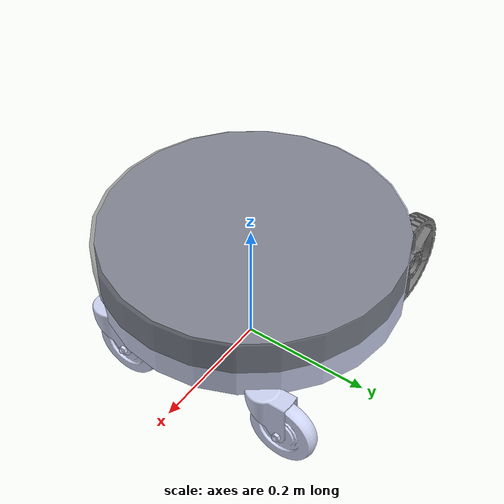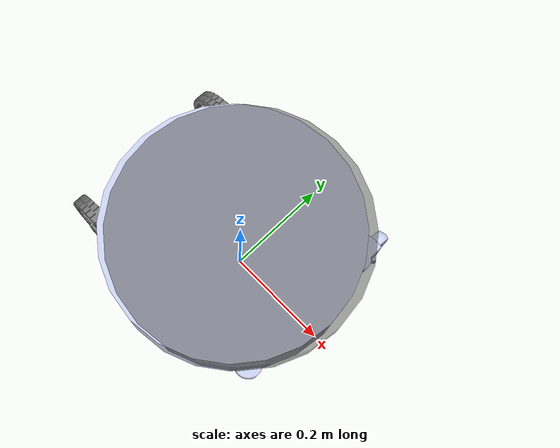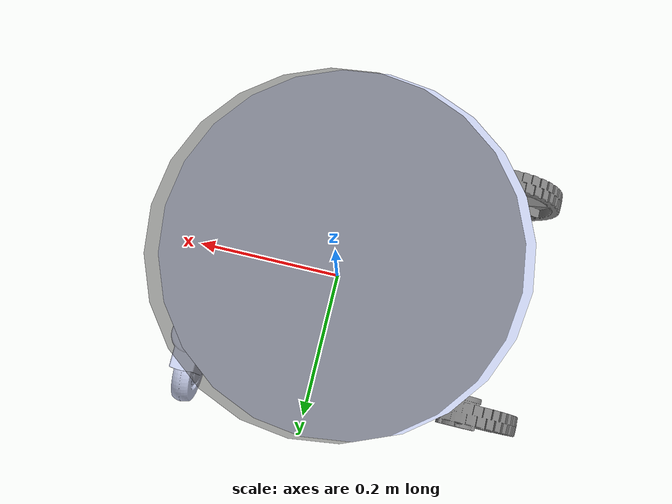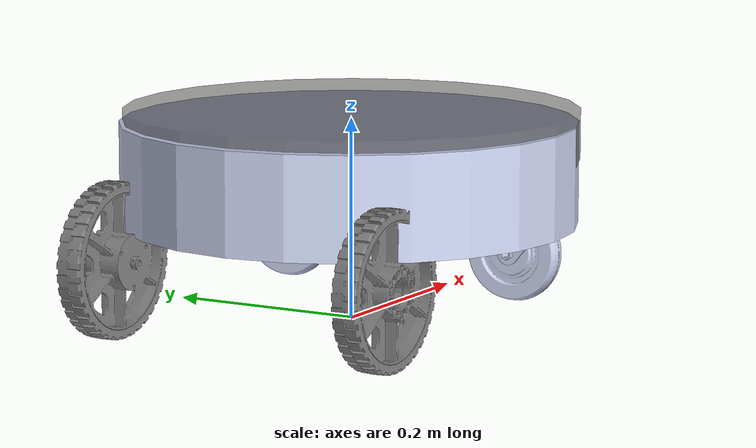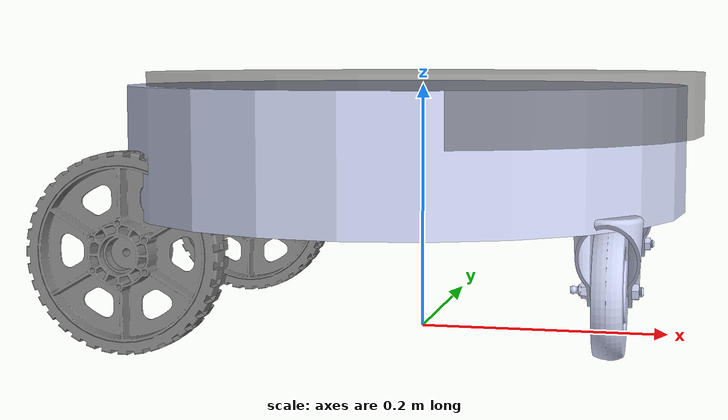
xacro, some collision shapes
<?xml version="1.0" encoding="utf-8"?>

<robot
  xmlns:xacro="http://www.ros.org/wiki/xacro">

  <xacro:property name="a_dim" value="0.2" />
  <xacro:property name="b_dim" value="0.2" />
  <xacro:property name="a_dim" value="0.2" />

  <link name="base_footprint" />

  <joint name="base_footprint_base_joint" type="fixed">
    <origin
      xyz="-0.284843388017437 -0.203598611982565 0.12064984794"
      rpy="0 0 ${pi/2.0}" />
    <parent
      link="base_footprint" />
    <child
      link="base_link" />
  </joint>

  <link name="base_link">
    <inertial>
      <origin
        xyz="0.198549611345678 -0.271316507443243 0.0289830936800706"
        rpy="0 0 0" />
      <mass
        value="3.89825211968488" />
      <inertia
        ixx="0.0661197424829709"
        ixy="0.000127503435039246"
        ixz="-3.37223289848948E-05"
        iyy="0.0537150913742591"
        iyz="1.76042008590663E-10"
        izz="0.119166120190766" />
    </inertial>
    <visual>
      <origin
        xyz="0 0 0"
        rpy="0 0 0" />
      <geometry>
        <mesh
          filename="package://hamr_description/meshes/base_link.stl" />
      </geometry>
      <material
        name="">
        <color
          rgba="0.792156862745098 0.819607843137255 0.933333333333333 1" />
      </material>
    </visual>
    <collision>
      <origin
        xyz="0.198549611345678 -0.271316507443243 0.0289830936800706"
        rpy="0 0 0" />
      <geometry>
        <cylinder radius="0.225" length="0.1" />
      </geometry>
    </collision>
  </link>

  <link name="right_wheel_link">

    <inertial>
      <origin
        xyz="-0.00186864044901727 2.89919122223314E-07 -1.06873356706116E-07"
        rpy="0 1.5707963267949 0" />
      <mass
        value="0.201354791790072" />
      <inertia
        ixx="0.000633771005763446"
        ixy="6.31284156682718E-10"
        ixz="-2.33742432524019E-10"
        iyy="0.000327993762072381"
        iyz="-1.05208219357446E-10"
        izz="0.000327993534995818" />
    </inertial>
    <visual>
      <origin
        xyz="0 0 0"
        rpy="0 1.5707963267949 0" />
      <geometry>
        <mesh
          filename="package://hamr_description/meshes/right_wheel_link.stl" />
      </geometry>
      <material
        name="">
        <color
          rgba="0.501960784313725 0.501960784313725 0.501960784313725 1" />
      </material>
    </visual>
    <collision>
      <origin
        xyz="0 0 0"
        rpy="0 1.5707963267949 0" />
      <geometry>
        <mesh
          filename="package://hamr_description/meshes/right_wheel_link.stl" />
      </geometry>
    </collision>
  </link>

  <joint name="base_right_wheel_joint" type="continuous">
    <origin
      xyz="0.0536437399956872 -0.0880220830805112 -0.0444496955381151"
      rpy="0 1.5707963267949 0" />
    <parent
      link="base_link" />
    <child
      link="right_wheel_link" />
    <axis
      xyz="0 0 1" />
  </joint>

  <link name="left_wheel_link">
    <inertial>
      <origin
        xyz="-1.54965267659679E-07 -2.70882595285182E-07 -0.0125686288378637"
        rpy="0 ${pi} 0" />
      <mass
        value="0.201354790396108" />
      <inertia
        ixx="0.000327993572579979"
        ixy="1.36473912872677E-10"
        ixz="3.33712968652168E-10"
        iyy="0.000327993723903578"
        iyz="5.84145333206651E-10"
        izz="0.000633771005385494" />
    </inertial>
    <visual>
      <origin
        xyz="0 0 ${0.0254 / 2.0}"
        rpy="0 ${pi} 0" />
      <geometry>
        <mesh
          filename="package://hamr_description/meshes/left_wheel_link.stl" />
      </geometry>
      <material
        name="">
        <color
          rgba="0.501960784313725 0.501960784313725 0.501960784313725 1" />
      </material>
    </visual>
    <collision>
      <origin
        xyz="0 0 ${0.0254 / 2.0}"
        rpy="0 ${pi} 0" />
      <geometry>
        <mesh
          filename="package://hamr_description/meshes/left_wheel_link.stl" />
      </geometry>
    </collision>
  </link>

  <joint name="base_left_wheel_joint" type="continuous">
    <origin
      xyz="${0.365456260020371 - 0.0254 / 2.0} -0.0880218689795108 -0.044451036743372"
      rpy="0 1.5707963267949 0" />
    <parent
      link="base_link" />
    <child
      link="left_wheel_link" />
    <axis
      xyz="0 0 1" />
  </joint>

  <link name="right_caster_link">
    <inertial>
      <origin
        xyz="-0.0150012811060658 -0.0307436227278899 0.000152559555446186"
        rpy="0 0 0" />
      <mass
        value="0.0265082807354226" />
      <inertia
        ixx="1.60132980312546E-05"
        ixy="-4.99863435365951E-06"
        ixz="3.31944351355999E-07"
        iyy="1.47149465447076E-05"
        iyz="6.51321675924592E-07"
        izz="1.89660027877702E-05" />
    </inertial>
    <visual>
      <origin
        xyz="0 0 0"
        rpy="0 0 0" />
      <geometry>
        <mesh
          filename="package://hamr_description/meshes/right_caster_link.stl" />
      </geometry>
      <material
        name="">
        <color
          rgba="0.792156862745098 0.819607843137255 0.933333333333333 1" />
      </material>
    </visual>
    <collision>
      <origin
        xyz="0 0 0"
        rpy="0 0 0" />
      <geometry>
        <mesh
          filename="package://hamr_description/meshes/right_caster_link.stl" />
      </geometry>
    </collision>
  </link>

  <joint name="base_right_caster_joint" type="continuous">
    <origin
      xyz="0.0693170406900002 -0.443936368975549 0"
      rpy="1.57079632679489 0 3.14159265358979" />
    <parent
      link="base_link" />
    <child
      link="right_caster_link" />
    <axis
      xyz="0 1 0" />
  </joint>

  <link name="right_caster_wheel_link">

    <inertial>
      <origin
        xyz="0 -1.38777878078145E-17 3.18171516239252E-05"
        rpy="0 0 0" />
      <mass
        value="0.16654404953881" />
      <inertia
        ixx="0.000108847088077107"
        ixy="6.30306408439238E-21"
        ixz="-2.84317671038941E-19"
        iyy="0.000108847088077106"
        iyz="5.26640272588924E-20"
        izz="0.000204453159280929" />
    </inertial>
    <visual>
      <origin
        xyz="0 0 0"
        rpy="0 0 0" />
      <geometry>
        <mesh
          filename="package://hamr_description/meshes/right_caster_wheel_link.stl" />
      </geometry>
      <material
        name="">
        <color
          rgba="0.792156862745098 0.819607843137255 0.933333333333333 1" />
      </material>
    </visual>
    <collision>
      <origin
        xyz="0 0 0"
        rpy="0 0 0" />
      <geometry>
        <cylinder radius="0.0508" length="0.0222" />
      </geometry>
    </collision>
  </link>

  <joint name="right_caster_right_caster_wheel_joint" type="continuous">
    <origin
      xyz="-0.0349249999999998 -0.0698500000000001 0"
      rpy="3.14159265358979 0 1.5707963267949" />
    <parent
      link="right_caster_link" />
    <child
      link="right_caster_wheel_link" />
    <axis
      xyz="0 0 1" />
  </joint>

  <link name="left_caster_link">
    <inertial>
      <origin
        xyz="-0.0150012924946221 -0.0307436318748196 0.000152540697397341"
        rpy="0 0 0" />
      <mass
        value="0.0265082807354226" />
      <inertia
        ixx="1.60132980312558E-05"
        ixy="-4.99863435365951E-06"
        ixz="3.31944351356076E-07"
        iyy="1.47149465447088E-05"
        iyz="6.51321675924747E-07"
        izz="1.89660027877702E-05" />
    </inertial>
    <visual>
      <origin
        xyz="0 0 0"
        rpy="0 0 0" />
      <geometry>
        <mesh
          filename="package://hamr_description/meshes/left_caster_link.stl" />
      </geometry>
      <material
        name="">
        <color
          rgba="0.792156862745098 0.819607843137255 0.933333333333333 1" />
      </material>
    </visual>
    <collision>
      <origin
        xyz="0 0 0"
        rpy="0 0 0" />
      <geometry>
        <cylinder radius="0.0508" length="0.0222" />
      </geometry>
    </collision>
  </link>

  <joint name="base_left_caster_joint" type="continuous">
    <origin
      xyz="0.33708295931 -0.443936368975549 0"
      rpy="1.5707963267949 0 3.14159265358979" />
    <parent
      link="base_link" />
    <child
      link="left_caster_link" />
    <axis
      xyz="0 1 0" />
  </joint>

  <link name="left_caster_wheel_link">
    <inertial>
      <origin
        xyz="0 0 3.18171516239252E-05"
        rpy="0 0 0" />
      <mass
        value="0.16654404953881" />
      <inertia
        ixx="0.000108847088077107"
        ixy="-9.95970176453651E-21"
        ixz="-4.39740781441153E-20"
        iyy="0.000108847088077107"
        iyz="1.89685544420883E-20"
        izz="0.000204453159280929" />
    </inertial>
    <visual>
      <origin
        xyz="0 0 0"
        rpy="0 0 0" />
      <geometry>
        <mesh
          filename="package://hamr_description/meshes/left_caster_wheel_link.stl" />
      </geometry>
      <material
        name="">
        <color
          rgba="0.792156862745098 0.819607843137255 0.933333333333333 1" />
      </material>
    </visual>
    <collision>
      <origin
        xyz="0 0 0"
        rpy="0 0 0" />
      <geometry>
        <cylinder radius="0.0508" length="0.0222" />
      </geometry>
    </collision>
  </link>

  <joint name="left_caster_left_caster_wheel_joint" type="continuous">
    <origin
      xyz="-0.0349249999999999 -0.0698500000000003 0"
      rpy="3.14159265358979 0 3.14159265358979" />
    <parent
      link="left_caster_link" />
    <child
      link="left_caster_wheel_link" />
    <axis
      xyz="0 0 1" />
  </joint>

  <link name="turret_link">
    <inertial>
      <origin
        xyz="0 0 0.0251720396917002"
        rpy="0 0 0" />
      <mass
        value="1.09707959594957" />
      <inertia
        ixx="0.0121008307090302"
        ixy="-1.18374646022879E-12"
        ixz="4.33557351686518E-11"
        iyy="0.0121008307080653"
        iyz="-5.70978727760025E-12"
        izz="0.0241928906037461" />
    </inertial>
    <visual>
      <origin
        xyz="0 0 0"
        rpy="-3.14159265358979 0 0" />
      <geometry>
        <mesh
          filename="package://hamr_description/meshes/turret_link.stl" />
      </geometry>
      <material
        name="">
        <color
          rgba="0.258823529411765 0.254901960784314 0.243137254901961 0.5" />
      </material>
    </visual>
    <collision>
      <origin
        xyz="0 0 0"
        rpy="-3.14159265358979 0 0" />
      <geometry>
        <cylinder radius="0.225" length="0.05" />
      </geometry>
    </collision>
  </link>

  <joint name="base_turret_joint" type="continuous">
    <origin
      xyz="0.203598611982565 -0.284843388017437 0.0645584712240723"
      rpy="0 0 0" />
    <parent
      link="base_link" />
    <child
      link="turret_link" />
    <axis
      xyz="0 0 1" />

    <limit effort="100" velocity="100" />
    <dynamics friction="0.3" damping="0.3" />
  </joint>

</robot>
